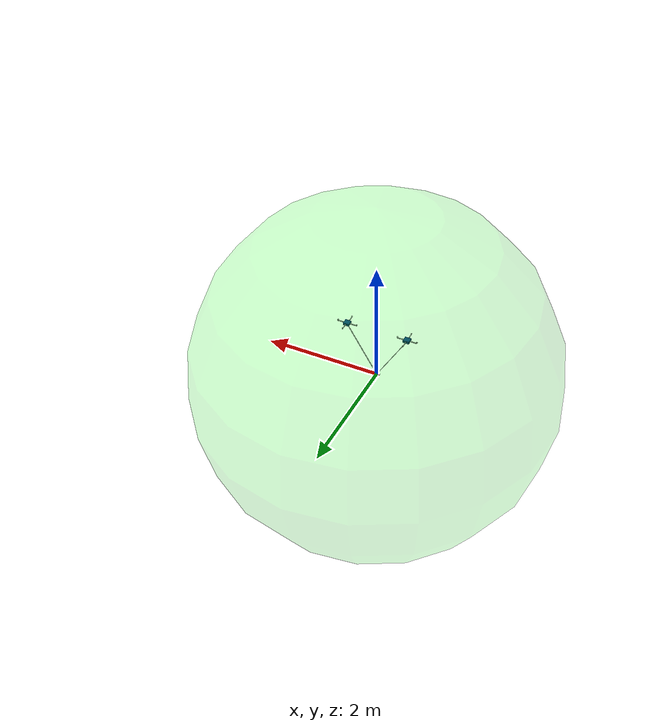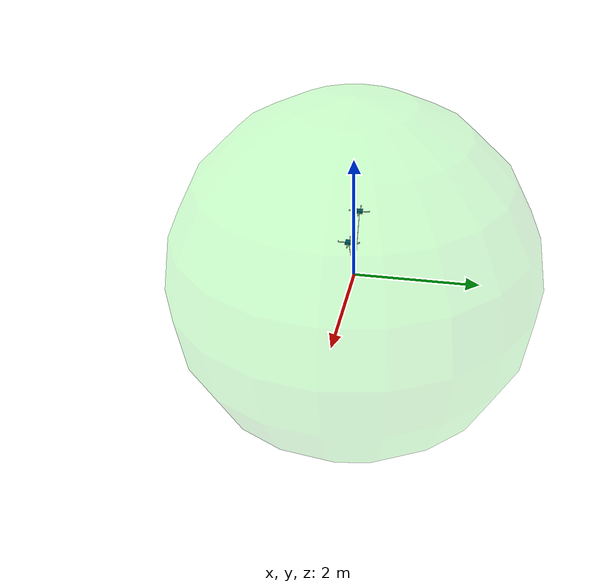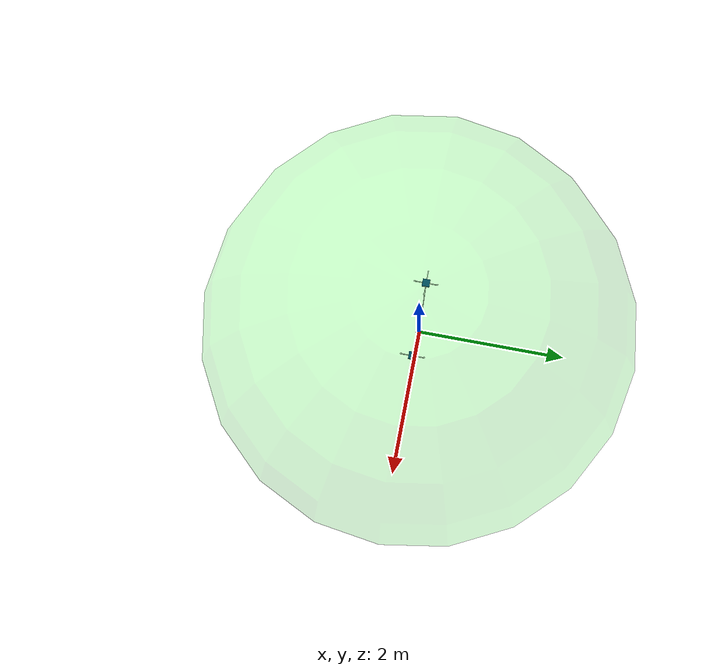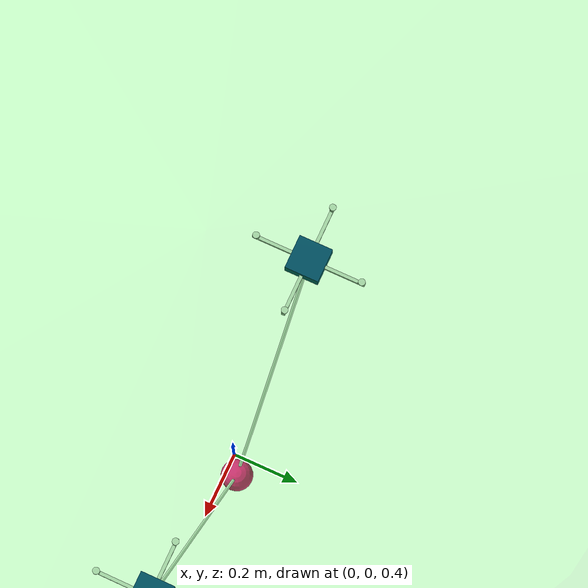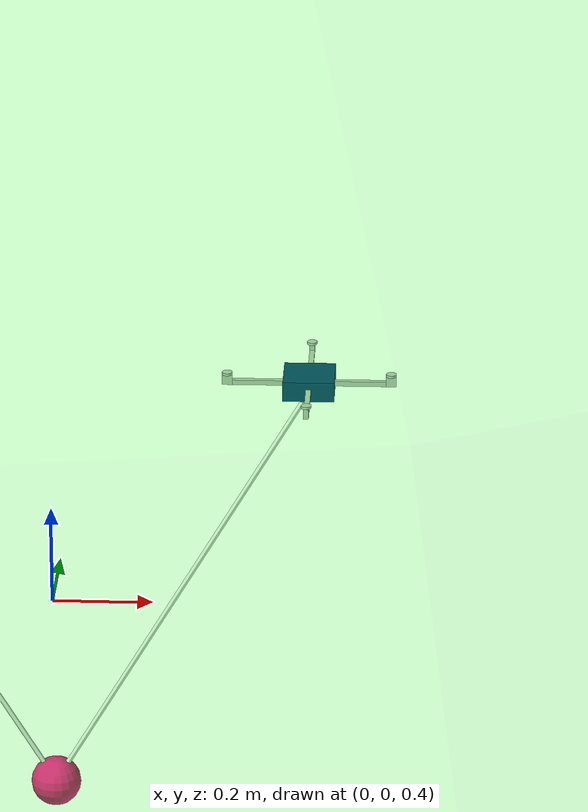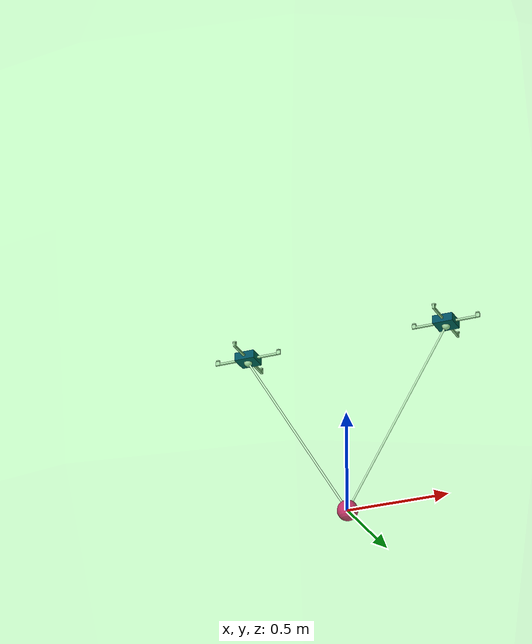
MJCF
<mujoco model="quadrotor_payload">
    <include file="empty_world_center.xml"/>
    <compiler angle="degree" inertiafromgeom="true" coordinate="local"/>
    <option timestep="0.002" gravity="0 0 -9.81" density="1.225" viscosity="1.789e-5" integrator="RK4"/>
    <default>
        <joint armature="1" damping="1" limited="true"/>
        <geom conaffinity="0" condim="3" density="5.0" friction="1 0.5 0.5" margin="0.01" rgba="0.8 0.6 0.4 1"/>
    </default>

    <worldbody>
        <!-- First quadrotor -->
        <body name="core_0" pos="-0.51 0 0.88">
            <geom name="core_geom_0" type="box" pos="0 0 0" quat="1 0 0 0" size=".05 .05 .02" rgba="0 0.15 0.47 1" mass="0.6"/>
            <joint name="root_0" type="free" damping="0" armature="0" pos="0 0 0" limited="false"/>
            <geom name="arm_front0_0" type="box" pos="0.1 0 0" size=".05 .005 .005" quat="1 0 0 0" rgba=".8 .8 .8 1" mass=".02"/>
            <geom name="arm_back0_0" type="box" pos="-0.1 0 0" size=".05 .005 .005" quat="0 0 0 1" rgba=".8 .8 .8 1" mass=".02"/>
            <geom name="arm_left0_0" type="box" pos="0 0.1 0" size=".05 .005 .005" quat=".707 0 0 .707" rgba=".8 .8 .8 1" mass=".02"/>
            <geom name="arm_right0_0" type="box" pos="0 -0.1 0" size=".05 .005 .005" quat=".707 0 0 -.707" rgba=".8 .8 .8 1" mass=".02"/>

            <body name="arm_front1_0" pos=".15 0 0">
                <geom type="box" pos=".01 0 .005" size=".01 .005 .01" quat="1 0 0 0" rgba=".8 .8 .8 1" mass=".01"/>
                <body name="thruster0_0" pos="0.01 0 0.015">
                    <geom type="cylinder" pos="0 0 .0025" size=".05 .0025" quat="1 0 0 0" rgba="1 0.67 0 0.5" mass=".02"/>
                    <site name="motor0_0" type="cylinder" pos="0 0 .0025" size=".01 .0025" quat="1 0 0 0" rgba=".8 .8 .8 1"/>
                </body>
            </body>

            <body name="arm_back1_0" pos="-.15 0 0">
                <geom type="box" pos="-.01 0 .005" size=".01 .005 .01" quat="0 0 0 1" rgba=".8 .8 .8 1" mass=".01"/>
                <body name="thruster1_0" pos="-0.01 0 .015">
                    <geom type="cylinder" pos="0 0 .0025" size=".05 .0025" quat="1 0 0 0" rgba="1 0.67 0 0.5" mass=".02"/>
                    <site name="motor1_0" type="cylinder" pos="0 0 .0025" size=".01 .0025" quat="1 0 0 0" rgba=".8 .8 .8 1"/>
                </body>
            </body>

            <body name="arm_left1_0" pos="0 .15 0">
                <geom type="box" pos="0 .01 .005" size=".01 .005 .01" quat=".7071068 0 0 .7071068" rgba=".8 .8 .8 1" mass=".01"/>
                <body name="thruster2_0" pos="0 0.01 0.015">
                    <geom type="cylinder" pos="0 0 .0025" size=".05 .0025" quat="1 0 0 0" rgba="1 0.67 0 0.5" mass=".02"/>
                    <site name="motor2_0" type="cylinder" pos="0 0 .0025" size=".01 0.0025" quat="1 0 0 0" rgba=".8 .8 .8 1"/>
                </body>
            </body>

            <body name="arm_right1_0" pos="0 -.15 0">
                <geom type="box" pos="0 -.01 .005" size=".01 .005 .01" quat=".7071068 0 0 -.7071068" rgba=".8 .8 .8 1" mass=".01"/>
                <body name="thruster3_0" pos="0 -0.01 .015">
                    <geom type="cylinder" pos="0 0 .0025" size=".05 .0025" quat="1 0 0 0" rgba="1 0.67 0 0.5" mass=".02"/>
                    <site name="motor3_0" type="cylinder" pos="0 0 .0025" size=".01 .0025" quat="1 0 0 0" rgba=".8 .8 .8 1"/>
                </body>
            </body>

            <body name="hook_core_0" pos="0 0 -0.02">
                <joint name="hook_core_joint_0" type="ball" pos="0 0 0" damping="0.1" armature="0.01"/>
                <geom type="sphere" size="0.02" rgba=".8 .8 .8 1"/>
                <site name="hook_core_site_0" pos="0 0 0" type="sphere" size="0.01" rgba=".8 .8 .8 1"/>
            </body>

            <site name="x_axis_0" type="box" pos=".1 .0 .0" size=".15 .005 .005" quat="1 0 0 0" rgba="1 0 0 0.2"/>
            <site name="y_axis_0" type="box" pos=".0 .1 .0" size=".15 .005 .005" quat=".707 0 0 .707" rgba="0 1 0 0.2"/>
            <site name="z_axis_0" type="box" pos=".0 .0 .1" size=".15 .005 .005" quat="-.707 0 .707 0" rgba="0 0 1 0.2"/>
        </body>

        <!-- Second quadrotor -->
        <body name="core_1" pos="0.51 0 0.88">
            <geom name="core_geom_1" type="box" pos="0 0 0" quat="1 0 0 0" size=".05 .05 .02" rgba="0 0.15 0.47 1" mass="0.6"/>
            <joint name="root_1" type="free" damping="0" armature="0" pos="0 0 0" limited="false"/>
            <geom name="arm_front0_1" type="box" pos="0.1 0 0" size=".05 .005 .005" quat="1 0 0 0" rgba=".8 .8 .8 1" mass=".02"/>
            <geom name="arm_back0_1" type="box" pos="-0.1 0 0" size=".05 .005 .005" quat="0 0 0 1" rgba=".8 .8 .8 1" mass=".02"/>
            <geom name="arm_left0_1" type="box" pos="0 0.1 0" size=".05 .005 .005" quat=".707 0 0 .707" rgba=".8 .8 .8 1" mass=".02"/>
            <geom name="arm_right0_1" type="box" pos="0 -0.1 0" size=".05 .005 .005" quat=".707 0 0 -.707" rgba=".8 .8 .8 1" mass=".02"/>

            <body name="arm_front1_1" pos=".15 0 0">
                <geom type="box" pos=".01 0 .005" size=".01 .005 .01" quat="1 0 0 0" rgba=".8 .8 .8 1" mass=".01"/>
                <body name="thruster0_1" pos="0.01 0 0.015">
                    <geom type="cylinder" pos="0 0 .0025" size=".05 .0025" quat="1 0 0 0" rgba="1 0.67 0 0.5" mass=".02"/>
                    <site name="motor0_1" type="cylinder" pos="0 0 .0025" size=".01 .0025" quat="1 0 0 0" rgba=".8 .8 .8 1"/>
                </body>
            </body>

            <body name="arm_back1_1" pos="-.15 0 0">
                <geom type="box" pos="-.01 0 .005" size=".01 .005 .01" quat="0 0 0 1" rgba=".8 .8 .8 1" mass=".01"/>
                <body name="thruster1_1" pos="-0.01 0 .015">
                    <geom type="cylinder" pos="0 0 .0025" size=".05 .0025" quat="1 0 0 0" rgba="1 0.67 0 0.5" mass=".02"/>
                    <site name="motor1_1" type="cylinder" pos="0 0 .0025" size=".01 .0025" quat="1 0 0 0" rgba=".8 .8 .8 1"/>
                </body>
            </body>

            <body name="arm_left1_1" pos="0 .15 0">
                <geom type="box" pos="0 .01 .005" size=".01 .005 .01" quat=".7071068 0 0 .7071068" rgba=".8 .8 .8 1" mass=".01"/>
                <body name="thruster2_1" pos="0 0.01 0.015">
                    <geom type="cylinder" pos="0 0 .0025" size=".05 .0025" quat="1 0 0 0" rgba="1 0.67 0 0.5" mass=".02"/>
                    <site name="motor2_1" type="cylinder" pos="0 0 .0025" size=".01 0.0025" quat="1 0 0 0" rgba=".8 .8 .8 1"/>
                </body>
            </body>

            <body name="arm_right1_1" pos="0 -.15 0">
                <geom type="box" pos="0 -.01 .005" size=".01 .005 .01" quat=".7071068 0 0 -.7071068" rgba=".8 .8 .8 1" mass=".01"/>
                <body name="thruster3_1" pos="0 -0.01 .015">
                    <geom type="cylinder" pos="0 0 .0025" size=".05 .0025" quat="1 0 0 0" rgba="1 0.67 0 0.5" mass=".02"/>
                    <site name="motor3_1" type="cylinder" pos="0 0 .0025" size=".01 .0025" quat="1 0 0 0" rgba=".8 .8 .8 1"/>
                </body>
            </body>

            <body name="hook_core_1" pos="0 0 -0.02">
                <joint name="hook_core_joint_1" type="ball" pos="0 0 0" damping="0.1" armature="0.01"/>
                <geom type="sphere" size="0.02" rgba=".8 .8 .8 1"/>
                <site name="hook_core_site_1" pos="0 0 0" type="sphere" size="0.01" rgba=".8 .8 .8 1"/>
            </body>

            <site name="x_axis_1" type="box" pos=".1 .0 .0" size=".15 .005 .005" quat="1 0 0 0" rgba="1 0 0 0.2"/>
            <site name="y_axis_1" type="box" pos=".0 .1 .0" size=".15 .005 .005" quat=".707 0 0 .707" rgba="0 1 0 0.2"/>
            <site name="z_axis_1" type="box" pos=".0 .0 .1" size=".15 .005 .005" quat="-.707 0 .707 0" rgba="0 0 1 0.2"/>
        </body>

        <!-- Payload -->
        <body name="payload" pos="0 0 0">
            <joint name="payload_joint" type="free" damping="0" armature="0" pos="0 0 0" limited="false"/>
            <geom type="sphere" size="0.05" rgba="1 0.02 0.54 1" mass="0.1"/>
            <body name="hook_payload" pos="0 0 0">
                <joint name="hook_payload_joint" type="ball" pos="0 0 0" range="0 0" damping="0.1" armature="0.01" limited="true"/>
                <geom type="sphere" size="0.02" rgba=".8 .8 .8 1"/>
                <site name="hook_payload_site" pos="0 0 0" type="sphere" size="0.01" rgba=".8 .8 .8 1"/>
            </body>
        </body>
    </worldbody>

    <!-- Tendons -->
    <tendon>
        <spatial range="0 1.0" limited="true" rgba="1 1 1 1" width=".005" stiffness="0">
            <site site="hook_payload_site"/>
            <site site="hook_core_site_0"/>
        </spatial>
        <spatial range="0 1.0" limited="true" rgba="1 1 1 1" width=".005" stiffness="0">
            <site site="hook_payload_site"/>
            <site site="hook_core_site_1"/>
        </spatial>
    </tendon>

    <!-- Actuators -->
    <actuator>
        <motor name="Motor0_0" ctrllimited="true" ctrlrange="0 5" gear="0  0. 1. 0. 0. -0.025" site="motor0_0"/>
        <motor name="Motor1_0" ctrllimited="true" ctrlrange="0 5" gear="0  0. 1. 0. 0. -0.025" site="motor1_0"/>
        <motor name="Motor2_0" ctrllimited="true" ctrlrange="0 5" gear="0  0. 1. 0. 0.  0.025" site="motor2_0"/>
        <motor name="Motor3_0" ctrllimited="true" ctrlrange="0 5" gear="0  0. 1. 0. 0.  0.025" site="motor3_0"/>

        <motor name="Motor0_1" ctrllimited="true" ctrlrange="0 5" gear="0  0. 1. 0. 0. -0.025" site="motor0_1"/>
        <motor name="Motor1_1" ctrllimited="true" ctrlrange="0 5" gear="0  0. 1. 0. 0. -0.025" site="motor1_1"/>
        <motor name="Motor2_1" ctrllimited="true" ctrlrange="0 5" gear="0  0. 1. 0. 0.  0.025" site="motor2_1"/>
        <motor name="Motor3_1" ctrllimited="true" ctrlrange="0 5" gear="0  0. 1. 0. 0.  0.025" site="motor3_1"/>
    </actuator>
</mujoco>

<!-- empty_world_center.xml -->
<mujoco model="empty-world">
	<compiler angle="degree" coordinate="local" inertiafromgeom="true"/>
	<option integrator="RK4" timestep="0.01"/>
	<size nconmax="500" njmax="1000"/>
	<default>
		<joint armature="1" damping="1" limited="true"/>
		<geom conaffinity="0" condim="3" density="5.0" friction="1 0.5 0.5" margin="0.01" rgba="0.8 0.6 0.4 1"/>
	</default>
	<asset>
		<texture fileback="images/sunny-back.png" filedown="images/sunny-down.png" filefront="images/sunny-front.png" fileleft="images/sunny-left.png" fileright="images/sunny-right.png" fileup="images/sunny-up.png" type="skybox"/>
		<texture builtin="flat" height="1278" mark="cross" markrgb="1 1 1" name="texgeom" random="0.01" rgb1="0.8627450980392157 0.8901960784313725 0.9137254901960784" rgb2="0.9058823529411765 0.9215686274509803 0.9647058823529412" type="cube" width="127"/>
		<texture builtin="checker" height="100" name="texplane" rgb1="0.8235294117647058 0.8117647058823529 0.9450980392156862" rgb2="0.43137254901960786 0.6392156862745098 0.9019607843137255" type="2d" width="100"/>
		<material name="MatPlane" reflectance="0.5" shininess="1" specular="1" texrepeat="60 60" texture="texplane"/>
		<material name="geom" texture="texgeom" texuniform="true"/>
	</asset>
	<worldbody>
		<light cutoff="100" diffuse="1 1 1" dir="0 0 -1.3" directional="true" exponent="1" pos="0 0 1.3" specular="0.1 0.1 0.1"/>
		<geom type="sphere" size="3.0" pos="0 0 0" rgba="0 1 0 0.1" conaffinity="0"/> Transparent green ball
	</worldbody>
</mujoco>
